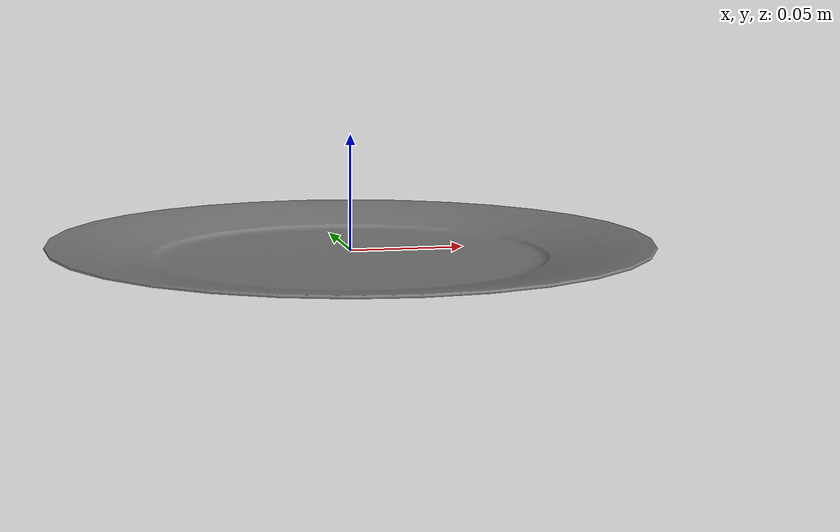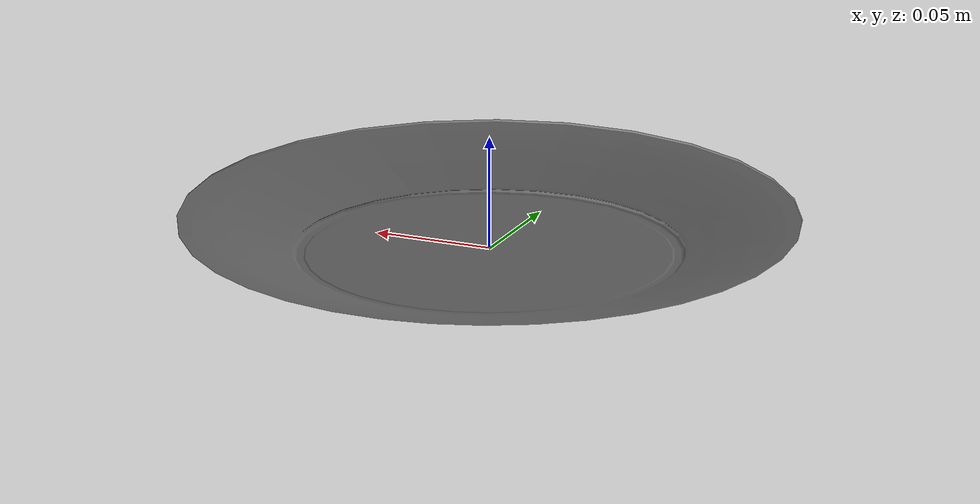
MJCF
<mujoco model="classic_plate_26cm">
    <compiler angle="radian" meshdir="../meshes/" texturedir="../meshes/textures/" autolimits="true" inertiafromgeom="false"/>
    <asset>
        <mesh name="ClassicPlate26cm" file="obj/ClassicPlate26cm.obj" />
        <mesh name="UCX_ClassicPlate26cm_001" file="stl/UCX_ClassicPlate26cm_001.stl" />
		<mesh name="UCX_ClassicPlate26cm_002" file="stl/UCX_ClassicPlate26cm_002.stl" />
		<mesh name="UCX_ClassicPlate26cm_003" file="stl/UCX_ClassicPlate26cm_003.stl" />
		<mesh name="UCX_ClassicPlate26cm_004" file="stl/UCX_ClassicPlate26cm_004.stl" />
		<mesh name="UCX_ClassicPlate26cm_005" file="stl/UCX_ClassicPlate26cm_005.stl" />
		<mesh name="UCX_ClassicPlate26cm_006" file="stl/UCX_ClassicPlate26cm_006.stl" />
		<mesh name="UCX_ClassicPlate26cm_007" file="stl/UCX_ClassicPlate26cm_007.stl" />
		<mesh name="UCX_ClassicPlate26cm_008" file="stl/UCX_ClassicPlate26cm_008.stl" />
		<mesh name="UCX_ClassicPlate26cm_009" file="stl/UCX_ClassicPlate26cm_009.stl" />
		<mesh name="UCX_ClassicPlate26cm_010" file="stl/UCX_ClassicPlate26cm_010.stl" />
		<mesh name="UCX_ClassicPlate26cm_011" file="stl/UCX_ClassicPlate26cm_011.stl" />
		<mesh name="UCX_ClassicPlate26cm_012" file="stl/UCX_ClassicPlate26cm_012.stl" />
		<mesh name="UCX_ClassicPlate26cm_013" file="stl/UCX_ClassicPlate26cm_013.stl" />
		<mesh name="UCX_ClassicPlate26cm_014" file="stl/UCX_ClassicPlate26cm_014.stl" />
		<mesh name="UCX_ClassicPlate26cm_015" file="stl/UCX_ClassicPlate26cm_015.stl" />
		<mesh name="UCX_ClassicPlate26cm_016" file="stl/UCX_ClassicPlate26cm_016.stl" />
		<mesh name="UCX_ClassicPlate26cm_017" file="stl/UCX_ClassicPlate26cm_017.stl" />
		<mesh name="UCX_ClassicPlate26cm_018" file="stl/UCX_ClassicPlate26cm_018.stl" />
		<mesh name="UCX_ClassicPlate26cm_019" file="stl/UCX_ClassicPlate26cm_019.stl" />
		<mesh name="UCX_ClassicPlate26cm_020" file="stl/UCX_ClassicPlate26cm_020.stl" />
		<mesh name="UCX_ClassicPlate26cm_021" file="stl/UCX_ClassicPlate26cm_021.stl" />
		<mesh name="UCX_ClassicPlate26cm_022" file="stl/UCX_ClassicPlate26cm_022.stl" />
		<mesh name="UCX_ClassicPlate26cm_023" file="stl/UCX_ClassicPlate26cm_023.stl" />
		<mesh name="UCX_ClassicPlate26cm_024" file="stl/UCX_ClassicPlate26cm_024.stl" />
		<mesh name="UCX_ClassicPlate26cm_025" file="stl/UCX_ClassicPlate26cm_025.stl" />
		<mesh name="UCX_ClassicPlate26cm_026" file="stl/UCX_ClassicPlate26cm_026.stl" />
		<mesh name="UCX_ClassicPlate26cm_027" file="stl/UCX_ClassicPlate26cm_027.stl" />
		<mesh name="UCX_ClassicPlate26cm_028" file="stl/UCX_ClassicPlate26cm_028.stl" />
		<mesh name="UCX_ClassicPlate26cm_029" file="stl/UCX_ClassicPlate26cm_029.stl" />
		<mesh name="UCX_ClassicPlate26cm_030" file="stl/UCX_ClassicPlate26cm_030.stl" />
		<mesh name="UCX_ClassicPlate26cm_031" file="stl/UCX_ClassicPlate26cm_031.stl" />
		<mesh name="UCX_ClassicPlate26cm_032" file="stl/UCX_ClassicPlate26cm_032.stl" />
		<mesh name="UCX_ClassicPlate26cm_033" file="stl/UCX_ClassicPlate26cm_033.stl" />
		<mesh name="UCX_ClassicPlate26cm_034" file="stl/UCX_ClassicPlate26cm_034.stl" />
		<mesh name="UCX_ClassicPlate26cm_035" file="stl/UCX_ClassicPlate26cm_035.stl" />
		<mesh name="UCX_ClassicPlate26cm_036" file="stl/UCX_ClassicPlate26cm_036.stl" />
		<mesh name="UCX_ClassicPlate26cm_037" file="stl/UCX_ClassicPlate26cm_037.stl" />
		<mesh name="UCX_ClassicPlate26cm_038" file="stl/UCX_ClassicPlate26cm_038.stl" />
		<mesh name="UCX_ClassicPlate26cm_039" file="stl/UCX_ClassicPlate26cm_039.stl" />
		<mesh name="UCX_ClassicPlate26cm_040" file="stl/UCX_ClassicPlate26cm_040.stl" />
		<mesh name="UCX_ClassicPlate26cm_041" file="stl/UCX_ClassicPlate26cm_041.stl" />
		<mesh name="UCX_ClassicPlate26cm_042" file="stl/UCX_ClassicPlate26cm_042.stl" />
		<mesh name="UCX_ClassicPlate26cm_043" file="stl/UCX_ClassicPlate26cm_043.stl" />
		<mesh name="UCX_ClassicPlate26cm_044" file="stl/UCX_ClassicPlate26cm_044.stl" />
		<mesh name="UCX_ClassicPlate26cm_045" file="stl/UCX_ClassicPlate26cm_045.stl" />
		<mesh name="UCX_ClassicPlate26cm_046" file="stl/UCX_ClassicPlate26cm_046.stl" />
		<mesh name="UCX_ClassicPlate26cm_047" file="stl/UCX_ClassicPlate26cm_047.stl" />
		<mesh name="UCX_ClassicPlate26cm_048" file="stl/UCX_ClassicPlate26cm_048.stl" />
		<mesh name="UCX_ClassicPlate26cm_049" file="stl/UCX_ClassicPlate26cm_049.stl" />
		<mesh name="UCX_ClassicPlate26cm_050" file="stl/UCX_ClassicPlate26cm_050.stl" />
		<mesh name="UCX_ClassicPlate26cm_051" file="stl/UCX_ClassicPlate26cm_051.stl" />
		<mesh name="UCX_ClassicPlate26cm_052" file="stl/UCX_ClassicPlate26cm_052.stl" />
		<mesh name="UCX_ClassicPlate26cm_053" file="stl/UCX_ClassicPlate26cm_053.stl" />
		<mesh name="UCX_ClassicPlate26cm_054" file="stl/UCX_ClassicPlate26cm_054.stl" />
		<mesh name="UCX_ClassicPlate26cm_055" file="stl/UCX_ClassicPlate26cm_055.stl" />
		<mesh name="UCX_ClassicPlate26cm_056" file="stl/UCX_ClassicPlate26cm_056.stl" />
		<mesh name="UCX_ClassicPlate26cm_057" file="stl/UCX_ClassicPlate26cm_057.stl" />
		<mesh name="UCX_ClassicPlate26cm_058" file="stl/UCX_ClassicPlate26cm_058.stl" />
		<mesh name="UCX_ClassicPlate26cm_059" file="stl/UCX_ClassicPlate26cm_059.stl" />
		<mesh name="UCX_ClassicPlate26cm_060" file="stl/UCX_ClassicPlate26cm_060.stl" />
		<mesh name="UCX_ClassicPlate26cm_061" file="stl/UCX_ClassicPlate26cm_061.stl" />
		<mesh name="UCX_ClassicPlate26cm_062" file="stl/UCX_ClassicPlate26cm_062.stl" />
		<mesh name="UCX_ClassicPlate26cm_063" file="stl/UCX_ClassicPlate26cm_063.stl" />
		<mesh name="UCX_ClassicPlate26cm_064" file="stl/UCX_ClassicPlate26cm_064.stl" />
		<mesh name="UCX_ClassicPlate26cm_065" file="stl/UCX_ClassicPlate26cm_065.stl" />
		<mesh name="UCX_ClassicPlate26cm_066" file="stl/UCX_ClassicPlate26cm_066.stl" />
		<mesh name="UCX_ClassicPlate26cm_067" file="stl/UCX_ClassicPlate26cm_067.stl" />
		<mesh name="UCX_ClassicPlate26cm_068" file="stl/UCX_ClassicPlate26cm_068.stl" />
		<mesh name="UCX_ClassicPlate26cm_069" file="stl/UCX_ClassicPlate26cm_069.stl" />
		<mesh name="UCX_ClassicPlate26cm_070" file="stl/UCX_ClassicPlate26cm_070.stl" />
		<mesh name="UCX_ClassicPlate26cm_071" file="stl/UCX_ClassicPlate26cm_071.stl" />
		<mesh name="UCX_ClassicPlate26cm_072" file="stl/UCX_ClassicPlate26cm_072.stl" />
		<mesh name="UCX_ClassicPlate26cm_073" file="stl/UCX_ClassicPlate26cm_073.stl" />
		<mesh name="UCX_ClassicPlate26cm_074" file="stl/UCX_ClassicPlate26cm_074.stl" />
		<mesh name="UCX_ClassicPlate26cm_075" file="stl/UCX_ClassicPlate26cm_075.stl" />
		<mesh name="UCX_ClassicPlate26cm_076" file="stl/UCX_ClassicPlate26cm_076.stl" />
		<mesh name="UCX_ClassicPlate26cm_077" file="stl/UCX_ClassicPlate26cm_077.stl" />
		<mesh name="UCX_ClassicPlate26cm_078" file="stl/UCX_ClassicPlate26cm_078.stl" />
		<mesh name="UCX_ClassicPlate26cm_079" file="stl/UCX_ClassicPlate26cm_079.stl" />
		<mesh name="UCX_ClassicPlate26cm_080" file="stl/UCX_ClassicPlate26cm_080.stl" />
		<mesh name="UCX_ClassicPlate26cm_081" file="stl/UCX_ClassicPlate26cm_081.stl" />
		<mesh name="UCX_ClassicPlate26cm_082" file="stl/UCX_ClassicPlate26cm_082.stl" />
		<mesh name="UCX_ClassicPlate26cm_083" file="stl/UCX_ClassicPlate26cm_083.stl" />
		<mesh name="UCX_ClassicPlate26cm_084" file="stl/UCX_ClassicPlate26cm_084.stl" />
		<mesh name="UCX_ClassicPlate26cm_085" file="stl/UCX_ClassicPlate26cm_085.stl" />
		<mesh name="UCX_ClassicPlate26cm_086" file="stl/UCX_ClassicPlate26cm_086.stl" />
		<mesh name="UCX_ClassicPlate26cm_087" file="stl/UCX_ClassicPlate26cm_087.stl" />
		<mesh name="UCX_ClassicPlate26cm_088" file="stl/UCX_ClassicPlate26cm_088.stl" />
		<mesh name="UCX_ClassicPlate26cm_089" file="stl/UCX_ClassicPlate26cm_089.stl" />
		<mesh name="UCX_ClassicPlate26cm_090" file="stl/UCX_ClassicPlate26cm_090.stl" />
		<mesh name="UCX_ClassicPlate26cm_091" file="stl/UCX_ClassicPlate26cm_091.stl" />
		<mesh name="UCX_ClassicPlate26cm_092" file="stl/UCX_ClassicPlate26cm_092.stl" />
		<mesh name="UCX_ClassicPlate26cm_093" file="stl/UCX_ClassicPlate26cm_093.stl" />
		<mesh name="UCX_ClassicPlate26cm_094" file="stl/UCX_ClassicPlate26cm_094.stl" />
		<mesh name="UCX_ClassicPlate26cm_095" file="stl/UCX_ClassicPlate26cm_095.stl" />
		<mesh name="UCX_ClassicPlate26cm_096" file="stl/UCX_ClassicPlate26cm_096.stl" />
		<mesh name="UCX_ClassicPlate26cm_097" file="stl/UCX_ClassicPlate26cm_097.stl" />
		<mesh name="UCX_ClassicPlate26cm_098" file="stl/UCX_ClassicPlate26cm_098.stl" />
		<mesh name="UCX_ClassicPlate26cm_099" file="stl/UCX_ClassicPlate26cm_099.stl" />
		<mesh name="UCX_ClassicPlate26cm_100" file="stl/UCX_ClassicPlate26cm_100.stl" />
		<mesh name="UCX_ClassicPlate26cm_101" file="stl/UCX_ClassicPlate26cm_101.stl" />
		<mesh name="UCX_ClassicPlate26cm_102" file="stl/UCX_ClassicPlate26cm_102.stl" />
		<mesh name="UCX_ClassicPlate26cm_103" file="stl/UCX_ClassicPlate26cm_103.stl" />
		<mesh name="UCX_ClassicPlate26cm_104" file="stl/UCX_ClassicPlate26cm_104.stl" />
		<mesh name="UCX_ClassicPlate26cm_105" file="stl/UCX_ClassicPlate26cm_105.stl" />
		<mesh name="UCX_ClassicPlate26cm_106" file="stl/UCX_ClassicPlate26cm_106.stl" />
		<mesh name="UCX_ClassicPlate26cm_107" file="stl/UCX_ClassicPlate26cm_107.stl" />
		<mesh name="UCX_ClassicPlate26cm_108" file="stl/UCX_ClassicPlate26cm_108.stl" />
		<mesh name="UCX_ClassicPlate26cm_109" file="stl/UCX_ClassicPlate26cm_109.stl" />
		<mesh name="UCX_ClassicPlate26cm_110" file="stl/UCX_ClassicPlate26cm_110.stl" />
		<mesh name="UCX_ClassicPlate26cm_111" file="stl/UCX_ClassicPlate26cm_111.stl" />
		<mesh name="UCX_ClassicPlate26cm_112" file="stl/UCX_ClassicPlate26cm_112.stl" />
		<mesh name="UCX_ClassicPlate26cm_113" file="stl/UCX_ClassicPlate26cm_113.stl" />
		<mesh name="UCX_ClassicPlate26cm_114" file="stl/UCX_ClassicPlate26cm_114.stl" />
		<mesh name="UCX_ClassicPlate26cm_115" file="stl/UCX_ClassicPlate26cm_115.stl" />
		<mesh name="UCX_ClassicPlate26cm_116" file="stl/UCX_ClassicPlate26cm_116.stl" />
		<mesh name="UCX_ClassicPlate26cm_117" file="stl/UCX_ClassicPlate26cm_117.stl" />
		<mesh name="UCX_ClassicPlate26cm_118" file="stl/UCX_ClassicPlate26cm_118.stl" />
		<mesh name="UCX_ClassicPlate26cm_119" file="stl/UCX_ClassicPlate26cm_119.stl" />
		<mesh name="UCX_ClassicPlate26cm_120" file="stl/UCX_ClassicPlate26cm_120.stl" />
		<mesh name="UCX_ClassicPlate26cm_121" file="stl/UCX_ClassicPlate26cm_121.stl" />
		<mesh name="UCX_ClassicPlate26cm_122" file="stl/UCX_ClassicPlate26cm_122.stl" />
		<mesh name="UCX_ClassicPlate26cm_123" file="stl/UCX_ClassicPlate26cm_123.stl" />
		<mesh name="UCX_ClassicPlate26cm_124" file="stl/UCX_ClassicPlate26cm_124.stl" />
		<mesh name="UCX_ClassicPlate26cm_125" file="stl/UCX_ClassicPlate26cm_125.stl" />
		<mesh name="UCX_ClassicPlate26cm_126" file="stl/UCX_ClassicPlate26cm_126.stl" />
		<mesh name="UCX_ClassicPlate26cm_127" file="stl/UCX_ClassicPlate26cm_127.stl" />
		<mesh name="UCX_ClassicPlate26cm_128" file="stl/UCX_ClassicPlate26cm_128.stl" />
		<mesh name="UCX_ClassicPlate26cm_129" file="stl/UCX_ClassicPlate26cm_129.stl" />
    </asset>
    <default>
        <default class="classic_plate_26cm_visual">
            <geom contype="0" conaffinity="0" />
        </default>
        <default class="classic_plate_26cm_collision">
            <geom rgba="0.9 0.9 0.9 0.0" />
        </default>
    </default>
    <worldbody>
        <body name="classic_plate_26cm">
            <freejoint />
            <inertial mass="0.07302302867174149" pos="-6.289005227699818e-07 3.446787673055951e-07 -0.0010605158749967813" diaginertia="0.0002867635921575129 0.0002867651346605271 0.0005716495797969401"/>
			<geom name="ClassicPlate26cm" pos="0.0 0.0 0.0" quat="1.0 0.0 0.0 0.0" type="mesh" mesh="ClassicPlate26cm" class="classic_plate_26cm_visual" />
            <geom name="UCX_ClassicPlate26cm_001" type="mesh" pos="0.0 0.0 0.0" quat="1.0 0.0 0.0 0.0" mesh="UCX_ClassicPlate26cm_001" class="classic_plate_26cm_collision"/>
            <geom name="UCX_ClassicPlate26cm_002" type="mesh" pos="0.0 0.0 0.0" quat="1.0 0.0 0.0 0.0" mesh="UCX_ClassicPlate26cm_002" class="classic_plate_26cm_collision"/>
            <geom name="UCX_ClassicPlate26cm_003" type="mesh" pos="0.0 0.0 0.0" quat="1.0 0.0 0.0 0.0" mesh="UCX_ClassicPlate26cm_003" class="classic_plate_26cm_collision"/>
            <geom name="UCX_ClassicPlate26cm_004" type="mesh" pos="0.0 0.0 0.0" quat="1.0 0.0 0.0 0.0" mesh="UCX_ClassicPlate26cm_004" class="classic_plate_26cm_collision"/>
            <geom name="UCX_ClassicPlate26cm_005" type="mesh" pos="0.0 0.0 0.0" quat="1.0 0.0 0.0 0.0" mesh="UCX_ClassicPlate26cm_005" class="classic_plate_26cm_collision"/>
            <geom name="UCX_ClassicPlate26cm_006" type="mesh" pos="0.0 0.0 0.0" quat="1.0 0.0 0.0 0.0" mesh="UCX_ClassicPlate26cm_006" class="classic_plate_26cm_collision"/>
            <geom name="UCX_ClassicPlate26cm_007" type="mesh" pos="0.0 0.0 0.0" quat="1.0 0.0 0.0 0.0" mesh="UCX_ClassicPlate26cm_007" class="classic_plate_26cm_collision"/>
            <geom name="UCX_ClassicPlate26cm_008" type="mesh" pos="0.0 0.0 0.0" quat="1.0 0.0 0.0 0.0" mesh="UCX_ClassicPlate26cm_008" class="classic_plate_26cm_collision"/>
            <geom name="UCX_ClassicPlate26cm_009" type="mesh" pos="0.0 0.0 0.0" quat="1.0 0.0 0.0 0.0" mesh="UCX_ClassicPlate26cm_009" class="classic_plate_26cm_collision"/>
            <geom name="UCX_ClassicPlate26cm_010" type="mesh" pos="0.0 0.0 0.0" quat="1.0 0.0 0.0 0.0" mesh="UCX_ClassicPlate26cm_010" class="classic_plate_26cm_collision"/>
            <geom name="UCX_ClassicPlate26cm_011" type="mesh" pos="0.0 0.0 0.0" quat="1.0 0.0 0.0 0.0" mesh="UCX_ClassicPlate26cm_011" class="classic_plate_26cm_collision"/>
            <geom name="UCX_ClassicPlate26cm_012" type="mesh" pos="0.0 0.0 0.0" quat="1.0 0.0 0.0 0.0" mesh="UCX_ClassicPlate26cm_012" class="classic_plate_26cm_collision"/>
            <geom name="UCX_ClassicPlate26cm_013" type="mesh" pos="0.0 0.0 0.0" quat="1.0 0.0 0.0 0.0" mesh="UCX_ClassicPlate26cm_013" class="classic_plate_26cm_collision"/>
            <geom name="UCX_ClassicPlate26cm_014" type="mesh" pos="0.0 0.0 0.0" quat="1.0 0.0 0.0 0.0" mesh="UCX_ClassicPlate26cm_014" class="classic_plate_26cm_collision"/>
            <geom name="UCX_ClassicPlate26cm_015" type="mesh" pos="0.0 0.0 0.0" quat="1.0 0.0 0.0 0.0" mesh="UCX_ClassicPlate26cm_015" class="classic_plate_26cm_collision"/>
            <geom name="UCX_ClassicPlate26cm_016" type="mesh" pos="0.0 0.0 0.0" quat="1.0 0.0 0.0 0.0" mesh="UCX_ClassicPlate26cm_016" class="classic_plate_26cm_collision"/>
            <geom name="UCX_ClassicPlate26cm_017" type="mesh" pos="0.0 0.0 0.0" quat="1.0 0.0 0.0 0.0" mesh="UCX_ClassicPlate26cm_017" class="classic_plate_26cm_collision"/>
            <geom name="UCX_ClassicPlate26cm_018" type="mesh" pos="0.0 0.0 0.0" quat="1.0 0.0 0.0 0.0" mesh="UCX_ClassicPlate26cm_018" class="classic_plate_26cm_collision"/>
            <geom name="UCX_ClassicPlate26cm_019" type="mesh" pos="0.0 0.0 0.0" quat="1.0 0.0 0.0 0.0" mesh="UCX_ClassicPlate26cm_019" class="classic_plate_26cm_collision"/>
            <geom name="UCX_ClassicPlate26cm_020" type="mesh" pos="0.0 0.0 0.0" quat="1.0 0.0 0.0 0.0" mesh="UCX_ClassicPlate26cm_020" class="classic_plate_26cm_collision"/>
            <geom name="UCX_ClassicPlate26cm_021" type="mesh" pos="0.0 0.0 0.0" quat="1.0 0.0 0.0 0.0" mesh="UCX_ClassicPlate26cm_021" class="classic_plate_26cm_collision"/>
            <geom name="UCX_ClassicPlate26cm_022" type="mesh" pos="0.0 0.0 0.0" quat="1.0 0.0 0.0 0.0" mesh="UCX_ClassicPlate26cm_022" class="classic_plate_26cm_collision"/>
            <geom name="UCX_ClassicPlate26cm_023" type="mesh" pos="0.0 0.0 0.0" quat="1.0 0.0 0.0 0.0" mesh="UCX_ClassicPlate26cm_023" class="classic_plate_26cm_collision"/>
            <geom name="UCX_ClassicPlate26cm_024" type="mesh" pos="0.0 0.0 0.0" quat="1.0 0.0 0.0 0.0" mesh="UCX_ClassicPlate26cm_024" class="classic_plate_26cm_collision"/>
            <geom name="UCX_ClassicPlate26cm_025" type="mesh" pos="0.0 0.0 0.0" quat="1.0 0.0 0.0 0.0" mesh="UCX_ClassicPlate26cm_025" class="classic_plate_26cm_collision"/>
            <geom name="UCX_ClassicPlate26cm_026" type="mesh" pos="0.0 0.0 0.0" quat="1.0 0.0 0.0 0.0" mesh="UCX_ClassicPlate26cm_026" class="classic_plate_26cm_collision"/>
            <geom name="UCX_ClassicPlate26cm_027" type="mesh" pos="0.0 0.0 0.0" quat="1.0 0.0 0.0 0.0" mesh="UCX_ClassicPlate26cm_027" class="classic_plate_26cm_collision"/>
            <geom name="UCX_ClassicPlate26cm_028" type="mesh" pos="0.0 0.0 0.0" quat="1.0 0.0 0.0 0.0" mesh="UCX_ClassicPlate26cm_028" class="classic_plate_26cm_collision"/>
            <geom name="UCX_ClassicPlate26cm_029" type="mesh" pos="0.0 0.0 0.0" quat="1.0 0.0 0.0 0.0" mesh="UCX_ClassicPlate26cm_029" class="classic_plate_26cm_collision"/>
            <geom name="UCX_ClassicPlate26cm_030" type="mesh" pos="0.0 0.0 0.0" quat="1.0 0.0 0.0 0.0" mesh="UCX_ClassicPlate26cm_030" class="classic_plate_26cm_collision"/>
            <geom name="UCX_ClassicPlate26cm_031" type="mesh" pos="0.0 0.0 0.0" quat="1.0 0.0 0.0 0.0" mesh="UCX_ClassicPlate26cm_031" class="classic_plate_26cm_collision"/>
            <geom name="UCX_ClassicPlate26cm_032" type="mesh" pos="0.0 0.0 0.0" quat="1.0 0.0 0.0 0.0" mesh="UCX_ClassicPlate26cm_032" class="classic_plate_26cm_collision"/>
            <geom name="UCX_ClassicPlate26cm_033" type="mesh" pos="0.0 0.0 0.0" quat="1.0 0.0 0.0 0.0" mesh="UCX_ClassicPlate26cm_033" class="classic_plate_26cm_collision"/>
            <geom name="UCX_ClassicPlate26cm_034" type="mesh" pos="0.0 0.0 0.0" quat="1.0 0.0 0.0 0.0" mesh="UCX_ClassicPlate26cm_034" class="classic_plate_26cm_collision"/>
            <geom name="UCX_ClassicPlate26cm_035" type="mesh" pos="0.0 0.0 0.0" quat="1.0 0.0 0.0 0.0" mesh="UCX_ClassicPlate26cm_035" class="classic_plate_26cm_collision"/>
            <geom name="UCX_ClassicPlate26cm_036" type="mesh" pos="0.0 0.0 0.0" quat="1.0 0.0 0.0 0.0" mesh="UCX_ClassicPlate26cm_036" class="classic_plate_26cm_collision"/>
            <geom name="UCX_ClassicPlate26cm_037" type="mesh" pos="0.0 0.0 0.0" quat="1.0 0.0 0.0 0.0" mesh="UCX_ClassicPlate26cm_037" class="classic_plate_26cm_collision"/>
            <geom name="UCX_ClassicPlate26cm_038" type="mesh" pos="0.0 0.0 0.0" quat="1.0 0.0 0.0 0.0" mesh="UCX_ClassicPlate26cm_038" class="classic_plate_26cm_collision"/>
            <geom name="UCX_ClassicPlate26cm_039" type="mesh" pos="0.0 0.0 0.0" quat="1.0 0.0 0.0 0.0" mesh="UCX_ClassicPlate26cm_039" class="classic_plate_26cm_collision"/>
            <geom name="UCX_ClassicPlate26cm_040" type="mesh" pos="0.0 0.0 0.0" quat="1.0 0.0 0.0 0.0" mesh="UCX_ClassicPlate26cm_040" class="classic_plate_26cm_collision"/>
            <geom name="UCX_ClassicPlate26cm_041" type="mesh" pos="0.0 0.0 0.0" quat="1.0 0.0 0.0 0.0" mesh="UCX_ClassicPlate26cm_041" class="classic_plate_26cm_collision"/>
            <geom name="UCX_ClassicPlate26cm_042" type="mesh" pos="0.0 0.0 0.0" quat="1.0 0.0 0.0 0.0" mesh="UCX_ClassicPlate26cm_042" class="classic_plate_26cm_collision"/>
            <geom name="UCX_ClassicPlate26cm_043" type="mesh" pos="0.0 0.0 0.0" quat="1.0 0.0 0.0 0.0" mesh="UCX_ClassicPlate26cm_043" class="classic_plate_26cm_collision"/>
            <geom name="UCX_ClassicPlate26cm_044" type="mesh" pos="0.0 0.0 0.0" quat="1.0 0.0 0.0 0.0" mesh="UCX_ClassicPlate26cm_044" class="classic_plate_26cm_collision"/>
            <geom name="UCX_ClassicPlate26cm_045" type="mesh" pos="0.0 0.0 0.0" quat="1.0 0.0 0.0 0.0" mesh="UCX_ClassicPlate26cm_045" class="classic_plate_26cm_collision"/>
            <geom name="UCX_ClassicPlate26cm_046" type="mesh" pos="0.0 0.0 0.0" quat="1.0 0.0 0.0 0.0" mesh="UCX_ClassicPlate26cm_046" class="classic_plate_26cm_collision"/>
            <geom name="UCX_ClassicPlate26cm_047" type="mesh" pos="0.0 0.0 0.0" quat="1.0 0.0 0.0 0.0" mesh="UCX_ClassicPlate26cm_047" class="classic_plate_26cm_collision"/>
            <geom name="UCX_ClassicPlate26cm_048" type="mesh" pos="0.0 0.0 0.0" quat="1.0 0.0 0.0 0.0" mesh="UCX_ClassicPlate26cm_048" class="classic_plate_26cm_collision"/>
            <geom name="UCX_ClassicPlate26cm_049" type="mesh" pos="0.0 0.0 0.0" quat="1.0 0.0 0.0 0.0" mesh="UCX_ClassicPlate26cm_049" class="classic_plate_26cm_collision"/>
            <geom name="UCX_ClassicPlate26cm_050" type="mesh" pos="0.0 0.0 0.0" quat="1.0 0.0 0.0 0.0" mesh="UCX_ClassicPlate26cm_050" class="classic_plate_26cm_collision"/>
            <geom name="UCX_ClassicPlate26cm_051" type="mesh" pos="0.0 0.0 0.0" quat="1.0 0.0 0.0 0.0" mesh="UCX_ClassicPlate26cm_051" class="classic_plate_26cm_collision"/>
            <geom name="UCX_ClassicPlate26cm_052" type="mesh" pos="0.0 0.0 0.0" quat="1.0 0.0 0.0 0.0" mesh="UCX_ClassicPlate26cm_052" class="classic_plate_26cm_collision"/>
            <geom name="UCX_ClassicPlate26cm_053" type="mesh" pos="0.0 0.0 0.0" quat="1.0 0.0 0.0 0.0" mesh="UCX_ClassicPlate26cm_053" class="classic_plate_26cm_collision"/>
            <geom name="UCX_ClassicPlate26cm_054" type="mesh" pos="0.0 0.0 0.0" quat="1.0 0.0 0.0 0.0" mesh="UCX_ClassicPlate26cm_054" class="classic_plate_26cm_collision"/>
            <geom name="UCX_ClassicPlate26cm_055" type="mesh" pos="0.0 0.0 0.0" quat="1.0 0.0 0.0 0.0" mesh="UCX_ClassicPlate26cm_055" class="classic_plate_26cm_collision"/>
            <geom name="UCX_ClassicPlate26cm_056" type="mesh" pos="0.0 0.0 0.0" quat="1.0 0.0 0.0 0.0" mesh="UCX_ClassicPlate26cm_056" class="classic_plate_26cm_collision"/>
            <geom name="UCX_ClassicPlate26cm_057" type="mesh" pos="0.0 0.0 0.0" quat="1.0 0.0 0.0 0.0" mesh="UCX_ClassicPlate26cm_057" class="classic_plate_26cm_collision"/>
            <geom name="UCX_ClassicPlate26cm_058" type="mesh" pos="0.0 0.0 0.0" quat="1.0 0.0 0.0 0.0" mesh="UCX_ClassicPlate26cm_058" class="classic_plate_26cm_collision"/>
            <geom name="UCX_ClassicPlate26cm_059" type="mesh" pos="0.0 0.0 0.0" quat="1.0 0.0 0.0 0.0" mesh="UCX_ClassicPlate26cm_059" class="classic_plate_26cm_collision"/>
            <geom name="UCX_ClassicPlate26cm_060" type="mesh" pos="0.0 0.0 0.0" quat="1.0 0.0 0.0 0.0" mesh="UCX_ClassicPlate26cm_060" class="classic_plate_26cm_collision"/>
            <geom name="UCX_ClassicPlate26cm_061" type="mesh" pos="0.0 0.0 0.0" quat="1.0 0.0 0.0 0.0" mesh="UCX_ClassicPlate26cm_061" class="classic_plate_26cm_collision"/>
            <geom name="UCX_ClassicPlate26cm_062" type="mesh" pos="0.0 0.0 0.0" quat="1.0 0.0 0.0 0.0" mesh="UCX_ClassicPlate26cm_062" class="classic_plate_26cm_collision"/>
            <geom name="UCX_ClassicPlate26cm_063" type="mesh" pos="0.0 0.0 0.0" quat="1.0 0.0 0.0 0.0" mesh="UCX_ClassicPlate26cm_063" class="classic_plate_26cm_collision"/>
            <geom name="UCX_ClassicPlate26cm_064" type="mesh" pos="0.0 0.0 0.0" quat="1.0 0.0 0.0 0.0" mesh="UCX_ClassicPlate26cm_064" class="classic_plate_26cm_collision"/>
            <geom name="UCX_ClassicPlate26cm_065" type="mesh" pos="0.0 0.0 0.0" quat="1.0 0.0 0.0 0.0" mesh="UCX_ClassicPlate26cm_065" class="classic_plate_26cm_collision"/>
            <geom name="UCX_ClassicPlate26cm_066" type="mesh" pos="0.0 0.0 0.0" quat="1.0 0.0 0.0 0.0" mesh="UCX_ClassicPlate26cm_066" class="classic_plate_26cm_collision"/>
            <geom name="UCX_ClassicPlate26cm_067" type="mesh" pos="0.0 0.0 0.0" quat="1.0 0.0 0.0 0.0" mesh="UCX_ClassicPlate26cm_067" class="classic_plate_26cm_collision"/>
            <geom name="UCX_ClassicPlate26cm_068" type="mesh" pos="0.0 0.0 0.0" quat="1.0 0.0 0.0 0.0" mesh="UCX_ClassicPlate26cm_068" class="classic_plate_26cm_collision"/>
            <geom name="UCX_ClassicPlate26cm_069" type="mesh" pos="0.0 0.0 0.0" quat="1.0 0.0 0.0 0.0" mesh="UCX_ClassicPlate26cm_069" class="classic_plate_26cm_collision"/>
            <geom name="UCX_ClassicPlate26cm_070" type="mesh" pos="0.0 0.0 0.0" quat="1.0 0.0 0.0 0.0" mesh="UCX_ClassicPlate26cm_070" class="classic_plate_26cm_collision"/>
            <geom name="UCX_ClassicPlate26cm_071" type="mesh" pos="0.0 0.0 0.0" quat="1.0 0.0 0.0 0.0" mesh="UCX_ClassicPlate26cm_071" class="classic_plate_26cm_collision"/>
            <geom name="UCX_ClassicPlate26cm_072" type="mesh" pos="0.0 0.0 0.0" quat="1.0 0.0 0.0 0.0" mesh="UCX_ClassicPlate26cm_072" class="classic_plate_26cm_collision"/>
            <geom name="UCX_ClassicPlate26cm_073" type="mesh" pos="0.0 0.0 0.0" quat="1.0 0.0 0.0 0.0" mesh="UCX_ClassicPlate26cm_073" class="classic_plate_26cm_collision"/>
            <geom name="UCX_ClassicPlate26cm_074" type="mesh" pos="0.0 0.0 0.0" quat="1.0 0.0 0.0 0.0" mesh="UCX_ClassicPlate26cm_074" class="classic_plate_26cm_collision"/>
            <geom name="UCX_ClassicPlate26cm_075" type="mesh" pos="0.0 0.0 0.0" quat="1.0 0.0 0.0 0.0" mesh="UCX_ClassicPlate26cm_075" class="classic_plate_26cm_collision"/>
            <geom name="UCX_ClassicPlate26cm_076" type="mesh" pos="0.0 0.0 0.0" quat="1.0 0.0 0.0 0.0" mesh="UCX_ClassicPlate26cm_076" class="classic_plate_26cm_collision"/>
            <geom name="UCX_ClassicPlate26cm_077" type="mesh" pos="0.0 0.0 0.0" quat="1.0 0.0 0.0 0.0" mesh="UCX_ClassicPlate26cm_077" class="classic_plate_26cm_collision"/>
            <geom name="UCX_ClassicPlate26cm_078" type="mesh" pos="0.0 0.0 0.0" quat="1.0 0.0 0.0 0.0" mesh="UCX_ClassicPlate26cm_078" class="classic_plate_26cm_collision"/>
            <geom name="UCX_ClassicPlate26cm_079" type="mesh" pos="0.0 0.0 0.0" quat="1.0 0.0 0.0 0.0" mesh="UCX_ClassicPlate26cm_079" class="classic_plate_26cm_collision"/>
            <geom name="UCX_ClassicPlate26cm_080" type="mesh" pos="0.0 0.0 0.0" quat="1.0 0.0 0.0 0.0" mesh="UCX_ClassicPlate26cm_080" class="classic_plate_26cm_collision"/>
            <geom name="UCX_ClassicPlate26cm_081" type="mesh" pos="0.0 0.0 0.0" quat="1.0 0.0 0.0 0.0" mesh="UCX_ClassicPlate26cm_081" class="classic_plate_26cm_collision"/>
            <geom name="UCX_ClassicPlate26cm_082" type="mesh" pos="0.0 0.0 0.0" quat="1.0 0.0 0.0 0.0" mesh="UCX_ClassicPlate26cm_082" class="classic_plate_26cm_collision"/>
            <geom name="UCX_ClassicPlate26cm_083" type="mesh" pos="0.0 0.0 0.0" quat="1.0 0.0 0.0 0.0" mesh="UCX_ClassicPlate26cm_083" class="classic_plate_26cm_collision"/>
            <geom name="UCX_ClassicPlate26cm_084" type="mesh" pos="0.0 0.0 0.0" quat="1.0 0.0 0.0 0.0" mesh="UCX_ClassicPlate26cm_084" class="classic_plate_26cm_collision"/>
            <geom name="UCX_ClassicPlate26cm_085" type="mesh" pos="0.0 0.0 0.0" quat="1.0 0.0 0.0 0.0" mesh="UCX_ClassicPlate26cm_085" class="classic_plate_26cm_collision"/>
            <geom name="UCX_ClassicPlate26cm_086" type="mesh" pos="0.0 0.0 0.0" quat="1.0 0.0 0.0 0.0" mesh="UCX_ClassicPlate26cm_086" class="classic_plate_26cm_collision"/>
            <geom name="UCX_ClassicPlate26cm_087" type="mesh" pos="0.0 0.0 0.0" quat="1.0 0.0 0.0 0.0" mesh="UCX_ClassicPlate26cm_087" class="classic_plate_26cm_collision"/>
            <geom name="UCX_ClassicPlate26cm_088" type="mesh" pos="0.0 0.0 0.0" quat="1.0 0.0 0.0 0.0" mesh="UCX_ClassicPlate26cm_088" class="classic_plate_26cm_collision"/>
            <geom name="UCX_ClassicPlate26cm_089" type="mesh" pos="0.0 0.0 0.0" quat="1.0 0.0 0.0 0.0" mesh="UCX_ClassicPlate26cm_089" class="classic_plate_26cm_collision"/>
            <geom name="UCX_ClassicPlate26cm_090" type="mesh" pos="0.0 0.0 0.0" quat="1.0 0.0 0.0 0.0" mesh="UCX_ClassicPlate26cm_090" class="classic_plate_26cm_collision"/>
            <geom name="UCX_ClassicPlate26cm_091" type="mesh" pos="0.0 0.0 0.0" quat="1.0 0.0 0.0 0.0" mesh="UCX_ClassicPlate26cm_091" class="classic_plate_26cm_collision"/>
            <geom name="UCX_ClassicPlate26cm_092" type="mesh" pos="0.0 0.0 0.0" quat="1.0 0.0 0.0 0.0" mesh="UCX_ClassicPlate26cm_092" class="classic_plate_26cm_collision"/>
            <geom name="UCX_ClassicPlate26cm_093" type="mesh" pos="0.0 0.0 0.0" quat="1.0 0.0 0.0 0.0" mesh="UCX_ClassicPlate26cm_093" class="classic_plate_26cm_collision"/>
            <geom name="UCX_ClassicPlate26cm_094" type="mesh" pos="0.0 0.0 0.0" quat="1.0 0.0 0.0 0.0" mesh="UCX_ClassicPlate26cm_094" class="classic_plate_26cm_collision"/>
            <geom name="UCX_ClassicPlate26cm_095" type="mesh" pos="0.0 0.0 0.0" quat="1.0 0.0 0.0 0.0" mesh="UCX_ClassicPlate26cm_095" class="classic_plate_26cm_collision"/>
            <geom name="UCX_ClassicPlate26cm_096" type="mesh" pos="0.0 0.0 0.0" quat="1.0 0.0 0.0 0.0" mesh="UCX_ClassicPlate26cm_096" class="classic_plate_26cm_collision"/>
            <geom name="UCX_ClassicPlate26cm_097" type="mesh" pos="0.0 0.0 0.0" quat="1.0 0.0 0.0 0.0" mesh="UCX_ClassicPlate26cm_097" class="classic_plate_26cm_collision"/>
            <geom name="UCX_ClassicPlate26cm_098" type="mesh" pos="0.0 0.0 0.0" quat="1.0 0.0 0.0 0.0" mesh="UCX_ClassicPlate26cm_098" class="classic_plate_26cm_collision"/>
            <geom name="UCX_ClassicPlate26cm_099" type="mesh" pos="0.0 0.0 0.0" quat="1.0 0.0 0.0 0.0" mesh="UCX_ClassicPlate26cm_099" class="classic_plate_26cm_collision"/>
            <geom name="UCX_ClassicPlate26cm_100" type="mesh" pos="0.0 0.0 0.0" quat="1.0 0.0 0.0 0.0" mesh="UCX_ClassicPlate26cm_100" class="classic_plate_26cm_collision"/>
            <geom name="UCX_ClassicPlate26cm_101" type="mesh" pos="0.0 0.0 0.0" quat="1.0 0.0 0.0 0.0" mesh="UCX_ClassicPlate26cm_101" class="classic_plate_26cm_collision"/>
            <geom name="UCX_ClassicPlate26cm_102" type="mesh" pos="0.0 0.0 0.0" quat="1.0 0.0 0.0 0.0" mesh="UCX_ClassicPlate26cm_102" class="classic_plate_26cm_collision"/>
            <geom name="UCX_ClassicPlate26cm_103" type="mesh" pos="0.0 0.0 0.0" quat="1.0 0.0 0.0 0.0" mesh="UCX_ClassicPlate26cm_103" class="classic_plate_26cm_collision"/>
            <geom name="UCX_ClassicPlate26cm_104" type="mesh" pos="0.0 0.0 0.0" quat="1.0 0.0 0.0 0.0" mesh="UCX_ClassicPlate26cm_104" class="classic_plate_26cm_collision"/>
            <geom name="UCX_ClassicPlate26cm_105" type="mesh" pos="0.0 0.0 0.0" quat="1.0 0.0 0.0 0.0" mesh="UCX_ClassicPlate26cm_105" class="classic_plate_26cm_collision"/>
            <geom name="UCX_ClassicPlate26cm_106" type="mesh" pos="0.0 0.0 0.0" quat="1.0 0.0 0.0 0.0" mesh="UCX_ClassicPlate26cm_106" class="classic_plate_26cm_collision"/>
            <geom name="UCX_ClassicPlate26cm_107" type="mesh" pos="0.0 0.0 0.0" quat="1.0 0.0 0.0 0.0" mesh="UCX_ClassicPlate26cm_107" class="classic_plate_26cm_collision"/>
            <geom name="UCX_ClassicPlate26cm_108" type="mesh" pos="0.0 0.0 0.0" quat="1.0 0.0 0.0 0.0" mesh="UCX_ClassicPlate26cm_108" class="classic_plate_26cm_collision"/>
            <geom name="UCX_ClassicPlate26cm_109" type="mesh" pos="0.0 0.0 0.0" quat="1.0 0.0 0.0 0.0" mesh="UCX_ClassicPlate26cm_109" class="classic_plate_26cm_collision"/>
            <geom name="UCX_ClassicPlate26cm_110" type="mesh" pos="0.0 0.0 0.0" quat="1.0 0.0 0.0 0.0" mesh="UCX_ClassicPlate26cm_110" class="classic_plate_26cm_collision"/>
            <geom name="UCX_ClassicPlate26cm_111" type="mesh" pos="0.0 0.0 0.0" quat="1.0 0.0 0.0 0.0" mesh="UCX_ClassicPlate26cm_111" class="classic_plate_26cm_collision"/>
            <geom name="UCX_ClassicPlate26cm_112" type="mesh" pos="0.0 0.0 0.0" quat="1.0 0.0 0.0 0.0" mesh="UCX_ClassicPlate26cm_112" class="classic_plate_26cm_collision"/>
            <geom name="UCX_ClassicPlate26cm_113" type="mesh" pos="0.0 0.0 0.0" quat="1.0 0.0 0.0 0.0" mesh="UCX_ClassicPlate26cm_113" class="classic_plate_26cm_collision"/>
            <geom name="UCX_ClassicPlate26cm_114" type="mesh" pos="0.0 0.0 0.0" quat="1.0 0.0 0.0 0.0" mesh="UCX_ClassicPlate26cm_114" class="classic_plate_26cm_collision"/>
            <geom name="UCX_ClassicPlate26cm_115" type="mesh" pos="0.0 0.0 0.0" quat="1.0 0.0 0.0 0.0" mesh="UCX_ClassicPlate26cm_115" class="classic_plate_26cm_collision"/>
            <geom name="UCX_ClassicPlate26cm_116" type="mesh" pos="0.0 0.0 0.0" quat="1.0 0.0 0.0 0.0" mesh="UCX_ClassicPlate26cm_116" class="classic_plate_26cm_collision"/>
            <geom name="UCX_ClassicPlate26cm_117" type="mesh" pos="0.0 0.0 0.0" quat="1.0 0.0 0.0 0.0" mesh="UCX_ClassicPlate26cm_117" class="classic_plate_26cm_collision"/>
            <geom name="UCX_ClassicPlate26cm_118" type="mesh" pos="0.0 0.0 0.0" quat="1.0 0.0 0.0 0.0" mesh="UCX_ClassicPlate26cm_118" class="classic_plate_26cm_collision"/>
            <geom name="UCX_ClassicPlate26cm_119" type="mesh" pos="0.0 0.0 0.0" quat="1.0 0.0 0.0 0.0" mesh="UCX_ClassicPlate26cm_119" class="classic_plate_26cm_collision"/>
            <geom name="UCX_ClassicPlate26cm_120" type="mesh" pos="0.0 0.0 0.0" quat="1.0 0.0 0.0 0.0" mesh="UCX_ClassicPlate26cm_120" class="classic_plate_26cm_collision"/>
            <geom name="UCX_ClassicPlate26cm_121" type="mesh" pos="0.0 0.0 0.0" quat="1.0 0.0 0.0 0.0" mesh="UCX_ClassicPlate26cm_121" class="classic_plate_26cm_collision"/>
            <geom name="UCX_ClassicPlate26cm_122" type="mesh" pos="0.0 0.0 0.0" quat="1.0 0.0 0.0 0.0" mesh="UCX_ClassicPlate26cm_122" class="classic_plate_26cm_collision"/>
            <geom name="UCX_ClassicPlate26cm_123" type="mesh" pos="0.0 0.0 0.0" quat="1.0 0.0 0.0 0.0" mesh="UCX_ClassicPlate26cm_123" class="classic_plate_26cm_collision"/>
            <geom name="UCX_ClassicPlate26cm_124" type="mesh" pos="0.0 0.0 0.0" quat="1.0 0.0 0.0 0.0" mesh="UCX_ClassicPlate26cm_124" class="classic_plate_26cm_collision"/>
            <geom name="UCX_ClassicPlate26cm_125" type="mesh" pos="0.0 0.0 0.0" quat="1.0 0.0 0.0 0.0" mesh="UCX_ClassicPlate26cm_125" class="classic_plate_26cm_collision"/>
            <geom name="UCX_ClassicPlate26cm_127" type="mesh" pos="0.0 0.0 0.0" quat="1.0 0.0 0.0 0.0" mesh="UCX_ClassicPlate26cm_127" class="classic_plate_26cm_collision"/>
            <geom name="UCX_ClassicPlate26cm_128" type="mesh" pos="0.0 0.0 0.0" quat="1.0 0.0 0.0 0.0" mesh="UCX_ClassicPlate26cm_128" class="classic_plate_26cm_collision"/>
            <geom name="UCX_ClassicPlate26cm_129" type="mesh" pos="0.0 0.0 0.0" quat="1.0 0.0 0.0 0.0" mesh="UCX_ClassicPlate26cm_129" class="classic_plate_26cm_collision"/>
        </body>
    </worldbody>
    <equality />
    <contact />
</mujoco>
